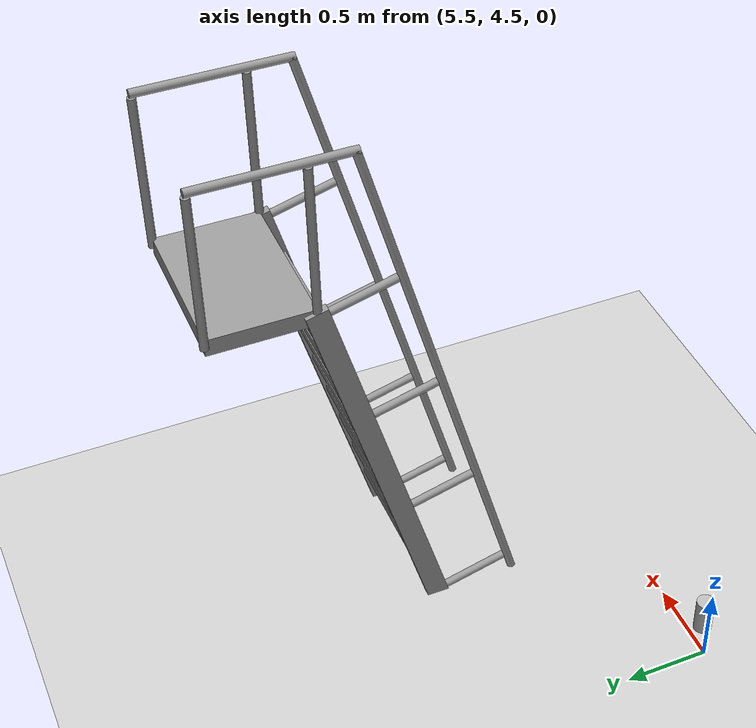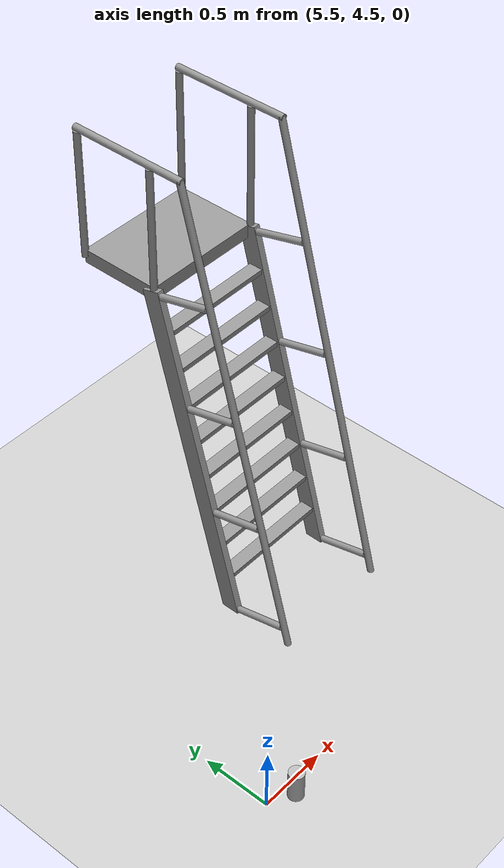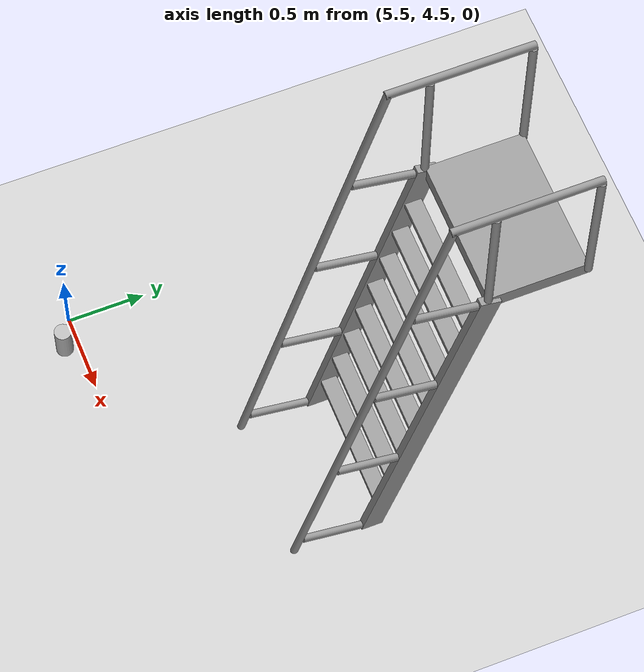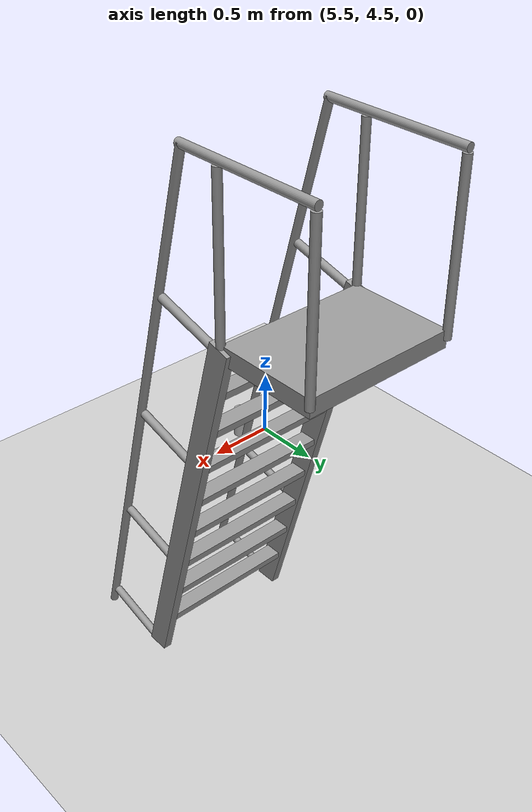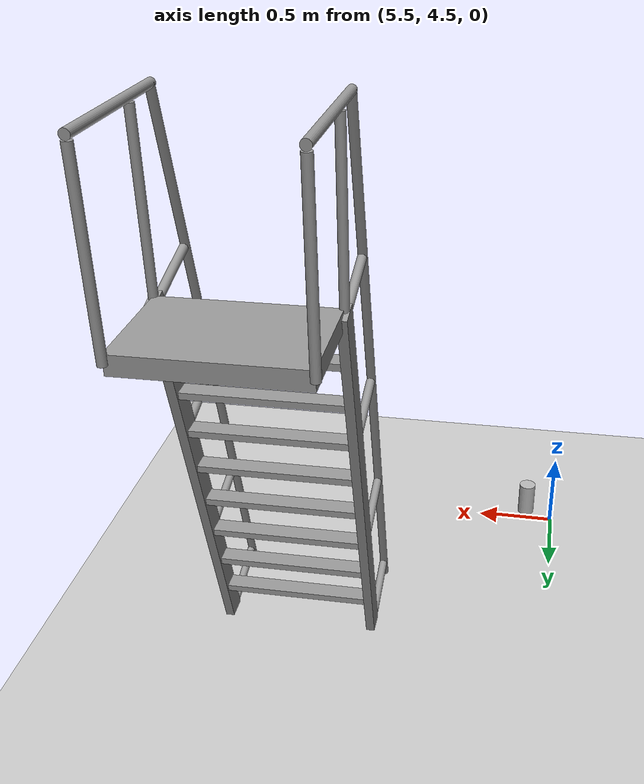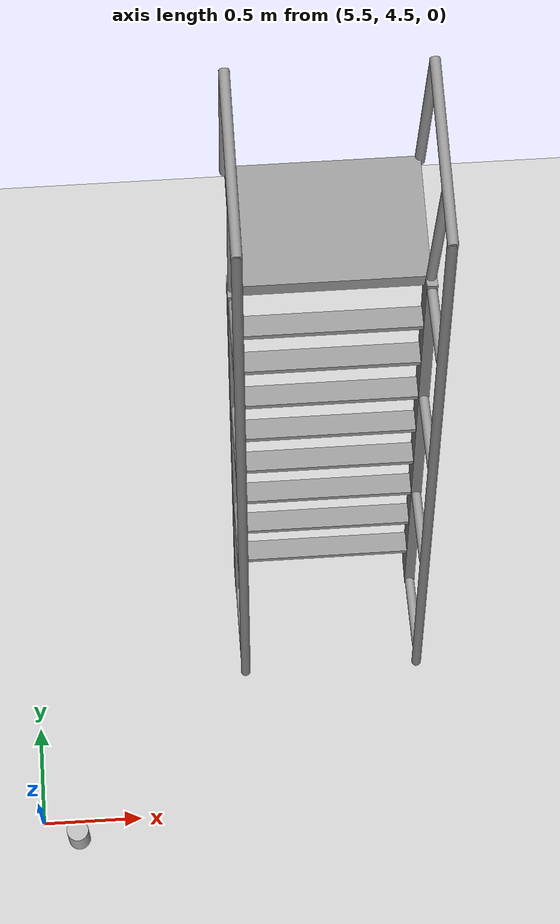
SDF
<sdf version="1.4">
 <world name="default">
  <model name="ground_plane">
   <static>1</static>
   <link name="link">
    <collision name="collision">
     <geometry><plane><normal>0 0 1</normal><size>100 100</size></plane></geometry>
     <surface><friction><ode><mu>100</mu><mu2>50</mu2></ode></friction></surface>
    </collision>
    <visual name="visual">
     <cast_shadows>0</cast_shadows>
     <geometry><plane><normal>0 0 1</normal><size>100 100</size></plane></geometry>
     <material>
      <script><uri>file://media/materials/scripts/gazebo.material</uri><name>Gazebo/Grey</name></script>
     </material>
    </visual>
    <velocity_decay><linear>0</linear><angular>0</angular></velocity_decay>
   </link>
  </model>
  <model name="beer">
   <link name="link">
    <pose>0 0 0.115 0 -0 0</pose>
    <inertial>
     <mass>0.39</mass>
     <inertia><ixx>0.00058</ixx><ixy>0</ixy><ixz>0</ixz><iyy>0.00058</iyy><iyz>0</iyz><izz>0.00019</izz></inertia>
    </inertial>
    <collision name="collision">
     <geometry><cylinder><radius>0.055</radius><length>0.23</length></cylinder></geometry>
    </collision>
    <visual name="visual">
     <geometry><cylinder><radius>0.055</radius><length>0.23</length></cylinder></geometry>
     <material>
      <script>
       <uri>model://beer/materials/scripts</uri>
       <uri>model://beer/materials/textures</uri>
       <name>Beer/Diffuse</name>
      </script>
     </material>
    </visual>
    <velocity_decay><linear>0</linear><angular>0</angular></velocity_decay>
   </link>
   <pose>5.67698 4.41169 -7e-06 -1e-06 -0 -2.7e-05</pose>
   <static>0</static>
  </model>
  <model name="ladder_75deg_2rails">
   <static>1</static>
   <link name="step0">
    <pose>0 0.0714531 0.266667 0 -0 0</pose>
    <inertial>
     <mass>9.75482</mass>
     <inertia>
      <ixx>0.00957124</ixx>
      <iyy>0.65963</iyy>
      <izz>0.666842</izz>
      <ixy>0</ixy>
      <ixz>0</ixz>
      <iyz>0</iyz>
     </inertia>
    </inertial>
    <collision name="collision"><geometry><box><size>0.9 0.1016 0.0381</size></box></geometry></collision>
    <visual name="visual">
     <geometry><box><size>0.9 0.1016 0.0381</size></box></geometry>
     <material>
      <script><uri>file://media/materials/scripts/gazebo.material</uri><name>Gazebo/Grey</name></script>
     </material>
    </visual>
    <velocity_decay><linear>0</linear><angular>0</angular></velocity_decay>
   </link>
   <link name="step1">
    <pose>0 0.142906 0.533333 0 -0 0</pose>
    <inertial>
     <mass>9.75482</mass>
     <inertia>
      <ixx>0.00957124</ixx>
      <iyy>0.65963</iyy>
      <izz>0.666842</izz>
      <ixy>0</ixy>
      <ixz>0</ixz>
      <iyz>0</iyz>
     </inertia>
    </inertial>
    <collision name="collision"><geometry><box><size>0.9 0.1016 0.0381</size></box></geometry></collision>
    <visual name="visual">
     <geometry><box><size>0.9 0.1016 0.0381</size></box></geometry>
     <material>
      <script><uri>file://media/materials/scripts/gazebo.material</uri><name>Gazebo/Grey</name></script>
     </material>
    </visual>
    <velocity_decay><linear>0</linear><angular>0</angular></velocity_decay>
   </link>
   <link name="step2">
    <pose>0 0.214359 0.8 0 -0 0</pose>
    <inertial>
     <mass>9.75482</mass>
     <inertia>
      <ixx>0.00957124</ixx>
      <iyy>0.65963</iyy>
      <izz>0.666842</izz>
      <ixy>0</ixy>
      <ixz>0</ixz>
      <iyz>0</iyz>
     </inertia>
    </inertial>
    <collision name="collision"><geometry><box><size>0.9 0.1016 0.0381</size></box></geometry></collision>
    <visual name="visual">
     <geometry><box><size>0.9 0.1016 0.0381</size></box></geometry>
     <material>
      <script><uri>file://media/materials/scripts/gazebo.material</uri><name>Gazebo/Grey</name></script>
     </material>
    </visual>
    <velocity_decay><linear>0</linear><angular>0</angular></velocity_decay>
   </link>
   <link name="step3">
    <pose>0 0.285812 1.06667 0 -0 0</pose>
    <inertial>
     <mass>9.75482</mass>
     <inertia>
      <ixx>0.00957124</ixx>
      <iyy>0.65963</iyy>
      <izz>0.666842</izz>
      <ixy>0</ixy>
      <ixz>0</ixz>
      <iyz>0</iyz>
     </inertia>
    </inertial>
    <collision name="collision"><geometry><box><size>0.9 0.1016 0.0381</size></box></geometry></collision>
    <visual name="visual">
     <geometry><box><size>0.9 0.1016 0.0381</size></box></geometry>
     <material>
      <script><uri>file://media/materials/scripts/gazebo.material</uri><name>Gazebo/Grey</name></script>
     </material>
    </visual>
    <velocity_decay><linear>0</linear><angular>0</angular></velocity_decay>
   </link>
   <link name="step4">
    <pose>0 0.357266 1.33333 0 -0 0</pose>
    <inertial>
     <mass>9.75482</mass>
     <inertia>
      <ixx>0.00957124</ixx>
      <iyy>0.65963</iyy>
      <izz>0.666842</izz>
      <ixy>0</ixy>
      <ixz>0</ixz>
      <iyz>0</iyz>
     </inertia>
    </inertial>
    <collision name="collision"><geometry><box><size>0.9 0.1016 0.0381</size></box></geometry></collision>
    <visual name="visual">
     <geometry><box><size>0.9 0.1016 0.0381</size></box></geometry>
     <material>
      <script><uri>file://media/materials/scripts/gazebo.material</uri><name>Gazebo/Grey</name></script>
     </material>
    </visual>
    <velocity_decay><linear>0</linear><angular>0</angular></velocity_decay>
   </link>
   <link name="step5">
    <pose>0 0.428719 1.6 0 -0 0</pose>
    <inertial>
     <mass>9.75482</mass>
     <inertia>
      <ixx>0.00957124</ixx>
      <iyy>0.65963</iyy>
      <izz>0.666842</izz>
      <ixy>0</ixy>
      <ixz>0</ixz>
      <iyz>0</iyz>
     </inertia>
    </inertial>
    <collision name="collision"><geometry><box><size>0.9 0.1016 0.0381</size></box></geometry></collision>
    <visual name="visual">
     <geometry><box><size>0.9 0.1016 0.0381</size></box></geometry>
     <material>
      <script><uri>file://media/materials/scripts/gazebo.material</uri><name>Gazebo/Grey</name></script>
     </material>
    </visual>
    <velocity_decay><linear>0</linear><angular>0</angular></velocity_decay>
   </link>
   <link name="step6">
    <pose>0 0.500172 1.86667 0 -0 0</pose>
    <inertial>
     <mass>9.75482</mass>
     <inertia>
      <ixx>0.00957124</ixx>
      <iyy>0.65963</iyy>
      <izz>0.666842</izz>
      <ixy>0</ixy>
      <ixz>0</ixz>
      <iyz>0</iyz>
     </inertia>
    </inertial>
    <collision name="collision"><geometry><box><size>0.9 0.1016 0.0381</size></box></geometry></collision>
    <visual name="visual">
     <geometry><box><size>0.9 0.1016 0.0381</size></box></geometry>
     <material>
      <script><uri>file://media/materials/scripts/gazebo.material</uri><name>Gazebo/Grey</name></script>
     </material>
    </visual>
    <velocity_decay><linear>0</linear><angular>0</angular></velocity_decay>
   </link>
   <link name="step7">
    <pose>0 0.571625 2.13333 0 -0 0</pose>
    <inertial>
     <mass>9.75482</mass>
     <inertia>
      <ixx>0.00957124</ixx>
      <iyy>0.65963</iyy>
      <izz>0.666842</izz>
      <ixy>0</ixy>
      <ixz>0</ixz>
      <iyz>0</iyz>
     </inertia>
    </inertial>
    <collision name="collision"><geometry><box><size>0.9 0.1016 0.0381</size></box></geometry></collision>
    <visual name="visual">
     <geometry><box><size>0.9 0.1016 0.0381</size></box></geometry>
     <material>
      <script><uri>file://media/materials/scripts/gazebo.material</uri><name>Gazebo/Grey</name></script>
     </material>
    </visual>
    <velocity_decay><linear>0</linear><angular>0</angular></velocity_decay>
   </link>
   <link name="landing">
    <pose>0 0.943078 2.4 0 -0 0</pose>
    <inertial>
     <mass>57.6072</mass>
     <inertia><ixx>1.73518</ixx><iyy>3.89545</iyy><izz>5.6167</izz><ixy>0</ixy><ixz>0</ixz><iyz>0</iyz></inertia>
    </inertial>
    <collision name="collision"><geometry><box><size>0.9 0.6 0.1016</size></box></geometry></collision>
    <visual name="visual">
     <geometry><box><size>0.9 0.6 0.1016</size></box></geometry>
     <material>
      <script><uri>file://media/materials/scripts/gazebo.material</uri><name>Gazebo/Grey</name></script>
     </material>
    </visual>
    <velocity_decay><linear>0</linear><angular>0</angular></velocity_decay>
   </link>
   <link name="left_side_wall">
    <pose>-0.45 0.321539 1.2 1.309 -0 0</pose>
    <collision name="collision"><geometry><box><size>0.0508 2.56466 0.13</size></box></geometry></collision>
    <visual name="visual">
     <geometry><box><size>0.0508 2.56466 0.13</size></box></geometry>
     <material>
      <script><uri>file://media/materials/scripts/gazebo.material</uri><name>Gazebo/Grey</name></script>
     </material>
    </visual>
    <velocity_decay><linear>0</linear><angular>0</angular></velocity_decay>
   </link>
   <link name="right_side_wall">
    <pose>0.45 0.321539 1.2 1.309 -0 0</pose>
    <collision name="collision"><geometry><box><size>0.0508 2.56466 0.13</size></box></geometry></collision>
    <visual name="visual">
     <geometry><box><size>0.0508 2.56466 0.13</size></box></geometry>
     <material>
      <script><uri>file://media/materials/scripts/gazebo.material</uri><name>Gazebo/Grey</name></script>
     </material>
    </visual>
    <velocity_decay><linear>0</linear><angular>0</angular></velocity_decay>
   </link>
   <link name="left_railing_long">
    <pose>-0.45 -0.053461 1.66651 -0.261799 0 0</pose>
    <collision name="collision">
     <geometry><cylinder><radius>0.02413</radius><length>3.51529</length></cylinder></geometry>
    </collision>
    <visual name="visual">
     <geometry><cylinder><radius>0.02413</radius><length>3.51529</length></cylinder></geometry>
     <material>
      <script><uri>file://media/materials/scripts/gazebo.material</uri><name>Gazebo/Grey</name></script>
     </material>
    </visual>
    <velocity_decay><linear>0</linear><angular>0</angular></velocity_decay>
   </link>
   <link name="left_railing_upright0">
    <pose>-0.45 -0.210089 0.0562931 1.309 -0 0</pose>
    <collision name="collision">
     <geometry><cylinder><radius>0.02413</radius><length>0.482963</length></cylinder></geometry>
    </collision>
    <visual name="visual">
     <geometry><cylinder><radius>0.02413</radius><length>0.482963</length></cylinder></geometry>
     <material>
      <script><uri>file://media/materials/scripts/gazebo.material</uri><name>Gazebo/Grey</name></script>
     </material>
    </visual>
    <velocity_decay><linear>0</linear><angular>0</angular></velocity_decay>
   </link>
   <link name="left_railing_upright1">
    <pose>-0.45 0.00427049 0.856293 1.309 -0 0</pose>
    <collision name="collision">
     <geometry><cylinder><radius>0.02413</radius><length>0.482963</length></cylinder></geometry>
    </collision>
    <visual name="visual">
     <geometry><cylinder><radius>0.02413</radius><length>0.482963</length></cylinder></geometry>
     <material>
      <script><uri>file://media/materials/scripts/gazebo.material</uri><name>Gazebo/Grey</name></script>
     </material>
    </visual>
    <velocity_decay><linear>0</linear><angular>0</angular></velocity_decay>
   </link>
   <link name="left_railing_upright2">
    <pose>-0.45 0.21863 1.65629 1.309 -0 0</pose>
    <collision name="collision">
     <geometry><cylinder><radius>0.02413</radius><length>0.482963</length></cylinder></geometry>
    </collision>
    <visual name="visual">
     <geometry><cylinder><radius>0.02413</radius><length>0.482963</length></cylinder></geometry>
     <material>
      <script><uri>file://media/materials/scripts/gazebo.material</uri><name>Gazebo/Grey</name></script>
     </material>
    </visual>
    <velocity_decay><linear>0</linear><angular>0</angular></velocity_decay>
   </link>
   <link name="left_railing_upright3">
    <pose>-0.45 0.432989 2.45629 1.309 -0 0</pose>
    <collision name="collision">
     <geometry><cylinder><radius>0.02413</radius><length>0.482963</length></cylinder></geometry>
    </collision>
    <visual name="visual">
     <geometry><cylinder><radius>0.02413</radius><length>0.482963</length></cylinder></geometry>
     <material>
      <script><uri>file://media/materials/scripts/gazebo.material</uri><name>Gazebo/Grey</name></script>
     </material>
    </visual>
    <velocity_decay><linear>0</linear><angular>0</angular></velocity_decay>
   </link>
   <link name="left_railing_landing_top">
    <pose>-0.45 0.818078 3.35714 1.5708 -0 0</pose>
    <collision name="collision">
     <geometry><cylinder><radius>0.02413</radius><length>0.87413</length></cylinder></geometry>
    </collision>
    <visual name="visual">
     <geometry><cylinder><radius>0.02413</radius><length>0.87413</length></cylinder></geometry>
     <material>
      <script><uri>file://media/materials/scripts/gazebo.material</uri><name>Gazebo/Grey</name></script>
     </material>
    </visual>
    <velocity_decay><linear>0</linear><angular>0</angular></velocity_decay>
   </link>
   <link name="left_railing_landing_upright_0">
    <pose>-0.45 0.643078 2.86651 0 -0 0</pose>
    <collision name="collision">
     <geometry><cylinder><radius>0.02413</radius><length>0.933013</length></cylinder></geometry>
    </collision>
    <visual name="visual">
     <geometry><cylinder><radius>0.02413</radius><length>0.933013</length></cylinder></geometry>
     <material>
      <script><uri>file://media/materials/scripts/gazebo.material</uri><name>Gazebo/Grey</name></script>
     </material>
    </visual>
    <velocity_decay><linear>0</linear><angular>0</angular></velocity_decay>
   </link>
   <link name="left_railing_landing_upright_1">
    <pose>-0.45 1.24308 2.86651 0 -0 0</pose>
    <collision name="collision">
     <geometry><cylinder><radius>0.02413</radius><length>0.933013</length></cylinder></geometry>
    </collision>
    <visual name="visual">
     <geometry><cylinder><radius>0.02413</radius><length>0.933013</length></cylinder></geometry>
     <material>
      <script><uri>file://media/materials/scripts/gazebo.material</uri><name>Gazebo/Grey</name></script>
     </material>
    </visual>
    <velocity_decay><linear>0</linear><angular>0</angular></velocity_decay>
   </link>
   <link name="right_railing_long">
    <pose>0.45 -0.053461 1.66651 -0.261799 0 0</pose>
    <collision name="collision">
     <geometry><cylinder><radius>0.02413</radius><length>3.51529</length></cylinder></geometry>
    </collision>
    <visual name="visual">
     <geometry><cylinder><radius>0.02413</radius><length>3.51529</length></cylinder></geometry>
     <material>
      <script><uri>file://media/materials/scripts/gazebo.material</uri><name>Gazebo/Grey</name></script>
     </material>
    </visual>
    <velocity_decay><linear>0</linear><angular>0</angular></velocity_decay>
   </link>
   <link name="right_railing_upright0">
    <pose>0.45 -0.210089 0.0562931 1.309 -0 0</pose>
    <collision name="collision">
     <geometry><cylinder><radius>0.02413</radius><length>0.482963</length></cylinder></geometry>
    </collision>
    <visual name="visual">
     <geometry><cylinder><radius>0.02413</radius><length>0.482963</length></cylinder></geometry>
     <material>
      <script><uri>file://media/materials/scripts/gazebo.material</uri><name>Gazebo/Grey</name></script>
     </material>
    </visual>
    <velocity_decay><linear>0</linear><angular>0</angular></velocity_decay>
   </link>
   <link name="right_railing_upright1">
    <pose>0.45 0.00427049 0.856293 1.309 -0 0</pose>
    <collision name="collision">
     <geometry><cylinder><radius>0.02413</radius><length>0.482963</length></cylinder></geometry>
    </collision>
    <visual name="visual">
     <geometry><cylinder><radius>0.02413</radius><length>0.482963</length></cylinder></geometry>
     <material>
      <script><uri>file://media/materials/scripts/gazebo.material</uri><name>Gazebo/Grey</name></script>
     </material>
    </visual>
    <velocity_decay><linear>0</linear><angular>0</angular></velocity_decay>
   </link>
   <link name="right_railing_upright2">
    <pose>0.45 0.21863 1.65629 1.309 -0 0</pose>
    <collision name="collision">
     <geometry><cylinder><radius>0.02413</radius><length>0.482963</length></cylinder></geometry>
    </collision>
    <visual name="visual">
     <geometry><cylinder><radius>0.02413</radius><length>0.482963</length></cylinder></geometry>
     <material>
      <script><uri>file://media/materials/scripts/gazebo.material</uri><name>Gazebo/Grey</name></script>
     </material>
    </visual>
    <velocity_decay><linear>0</linear><angular>0</angular></velocity_decay>
   </link>
   <link name="right_railing_upright3">
    <pose>0.45 0.432989 2.45629 1.309 -0 0</pose>
    <collision name="collision">
     <geometry><cylinder><radius>0.02413</radius><length>0.482963</length></cylinder></geometry>
    </collision>
    <visual name="visual">
     <geometry><cylinder><radius>0.02413</radius><length>0.482963</length></cylinder></geometry>
     <material>
      <script><uri>file://media/materials/scripts/gazebo.material</uri><name>Gazebo/Grey</name></script>
     </material>
    </visual>
    <velocity_decay><linear>0</linear><angular>0</angular></velocity_decay>
   </link>
   <link name="right_railing_landing_top">
    <pose>0.45 0.818078 3.35714 1.5708 -0 0</pose>
    <collision name="collision">
     <geometry><cylinder><radius>0.02413</radius><length>0.87413</length></cylinder></geometry>
    </collision>
    <visual name="visual">
     <geometry><cylinder><radius>0.02413</radius><length>0.87413</length></cylinder></geometry>
     <material>
      <script><uri>file://media/materials/scripts/gazebo.material</uri><name>Gazebo/Grey</name></script>
     </material>
    </visual>
    <velocity_decay><linear>0</linear><angular>0</angular></velocity_decay>
   </link>
   <link name="right_railing_landing_upright_0">
    <pose>0.45 0.643078 2.86651 0 -0 0</pose>
    <collision name="collision">
     <geometry><cylinder><radius>0.02413</radius><length>0.933013</length></cylinder></geometry>
    </collision>
    <visual name="visual">
     <geometry><cylinder><radius>0.02413</radius><length>0.933013</length></cylinder></geometry>
     <material>
      <script><uri>file://media/materials/scripts/gazebo.material</uri><name>Gazebo/Grey</name></script>
     </material>
    </visual>
    <velocity_decay><linear>0</linear><angular>0</angular></velocity_decay>
   </link>
   <link name="right_railing_landing_upright_1">
    <pose>0.45 1.24308 2.86651 0 -0 0</pose>
    <collision name="collision">
     <geometry><cylinder><radius>0.02413</radius><length>0.933013</length></cylinder></geometry>
    </collision>
    <visual name="visual">
     <geometry><cylinder><radius>0.02413</radius><length>0.933013</length></cylinder></geometry>
     <material>
      <script><uri>file://media/materials/scripts/gazebo.material</uri><name>Gazebo/Grey</name></script>
     </material>
    </visual>
    <velocity_decay><linear>0</linear><angular>0</angular></velocity_decay>
   </link>
   <pose>7.03641 5.75093 0 0 -0 0</pose>
  </model>
 </world>
</sdf>
